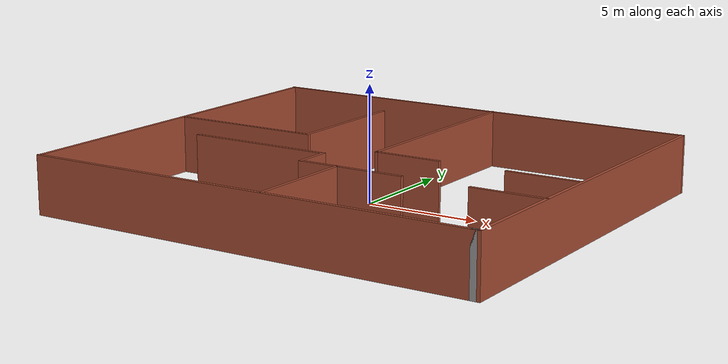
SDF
<?xml version='1.0'?>
<sdf version='1.6'>
  <model name='textureWalls'>
    <link name='Wall_10'>
      <pose frame=''>9.91347 -8.68752 0 0 -0 3.14159</pose>
      <self_collide>0</self_collide>
      <kinematic>0</kinematic>
      <visual name='Wall_10_Visual'>
        <pose frame=''>0 0 1.25 0 -0 0</pose>
        <geometry>
          <box>
            <size>0.423056 0.15 2.5</size>
          </box>
        </geometry>
        <material>
          <script>
            <uri>file://media/materials/scripts/gazebo.material</uri>
            <name>Gazebo/Grey</name>
          </script>
          <ambient>1 1 1 1</ambient>
          <diffuse>0.7 0.7 0.7 1</diffuse>
          <specular>0.01 0.01 0.01 1</specular>
          <emissive>0 0 0 1</emissive>
        </material>
        <cast_shadows>1</cast_shadows>
        <transparency>0</transparency>
      </visual>
      <collision name='Wall_10_Collision'>
        <laser_retro>0</laser_retro>
        <max_contacts>10</max_contacts>
        <pose frame=''>0 0 1.25 0 -0 0</pose>
        <geometry>
          <box>
            <size>0.423056 0.15 2.5</size>
          </box>
        </geometry>
        <surface>
          <friction>
            <ode>
              <mu>1</mu>
              <mu2>1</mu2>
              <fdir1>0 0 0</fdir1>
              <slip1>0</slip1>
              <slip2>0</slip2>
            </ode>
            <torsional>
              <coefficient>1</coefficient>
              <patch_radius>0</patch_radius>
              <surface_radius>0</surface_radius>
              <use_patch_radius>1</use_patch_radius>
              <ode>
                <slip>0</slip>
              </ode>
            </torsional>
          </friction>
          <bounce>
            <restitution_coefficient>0</restitution_coefficient>
            <threshold>1e+06</threshold>
          </bounce>
          <contact>
            <collide_without_contact>0</collide_without_contact>
            <collide_without_contact_bitmask>1</collide_without_contact_bitmask>
            <collide_bitmask>1</collide_bitmask>
            <ode>
              <soft_cfm>0</soft_cfm>
              <soft_erp>0.2</soft_erp>
              <kp>1e+13</kp>
              <kd>1</kd>
              <max_vel>0.01</max_vel>
              <min_depth>0</min_depth>
            </ode>
            <bullet>
              <split_impulse>1</split_impulse>
              <split_impulse_penetration_threshold>-0.01</split_impulse_penetration_threshold>
              <soft_cfm>0</soft_cfm>
              <soft_erp>0.2</soft_erp>
              <kp>1e+13</kp>
              <kd>1</kd>
            </bullet>
          </contact>
        </surface>
      </collision>
    </link>
    <link name='Wall_12'>
      <pose frame=''>10.05 -0.012524 0 0 -0 1.5708</pose>
      <self_collide>0</self_collide>
      <kinematic>0</kinematic>
      <visual name='Wall_12_Visual'>
        <pose frame=''>0 0 1.25 0 -0 0</pose>
        <geometry>
          <box>
            <size>17.5 0.15 2.5</size>
          </box>
        </geometry>
        <material>
          <script>
            <uri>file://media/materials/scripts/gazebo.material</uri>
            <name>Gazebo/Bricks</name>
          </script>
          <ambient>1 1 1 1</ambient>
          <diffuse>1 1 1 1</diffuse>
          <specular>0.2 0.2 0.2 1</specular>
          <emissive>0 0 0 1</emissive>
        </material>
        <cast_shadows>1</cast_shadows>
        <transparency>0</transparency>
      </visual>
      <collision name='Wall_12_Collision'>
        <laser_retro>0</laser_retro>
        <max_contacts>10</max_contacts>
        <pose frame=''>0 0 1.25 0 -0 0</pose>
        <geometry>
          <box>
            <size>17.5 0.15 2.5</size>
          </box>
        </geometry>
        <surface>
          <friction>
            <ode>
              <mu>1</mu>
              <mu2>1</mu2>
              <fdir1>0 0 0</fdir1>
              <slip1>0</slip1>
              <slip2>0</slip2>
            </ode>
            <torsional>
              <coefficient>1</coefficient>
              <patch_radius>0</patch_radius>
              <surface_radius>0</surface_radius>
              <use_patch_radius>1</use_patch_radius>
              <ode>
                <slip>0</slip>
              </ode>
            </torsional>
          </friction>
          <bounce>
            <restitution_coefficient>0</restitution_coefficient>
            <threshold>1e+06</threshold>
          </bounce>
          <contact>
            <collide_without_contact>0</collide_without_contact>
            <collide_without_contact_bitmask>1</collide_without_contact_bitmask>
            <collide_bitmask>1</collide_bitmask>
            <ode>
              <soft_cfm>0</soft_cfm>
              <soft_erp>0.2</soft_erp>
              <kp>1e+13</kp>
              <kd>1</kd>
              <max_vel>0.01</max_vel>
              <min_depth>0</min_depth>
            </ode>
            <bullet>
              <split_impulse>1</split_impulse>
              <split_impulse_penetration_threshold>-0.01</split_impulse_penetration_threshold>
              <soft_cfm>0</soft_cfm>
              <soft_erp>0.2</soft_erp>
              <kp>1e+13</kp>
              <kd>1</kd>
            </bullet>
          </contact>
        </surface>
      </collision>
    </link>
    <link name='Wall_14'>
      <pose frame=''>-10.0148 -0.031987 0 0 0 -1.5708</pose>
      <self_collide>0</self_collide>
      <kinematic>0</kinematic>
      <visual name='Wall_14_Visual'>
        <pose frame=''>0 0 1.25 0 -0 0</pose>
        <geometry>
          <box>
            <size>17.25 0.15 2.5</size>
          </box>
        </geometry>
        <material>
          <script>
            <uri>file://media/materials/scripts/gazebo.material</uri>
            <name>Gazebo/Bricks</name>
          </script>
          <ambient>1 1 1 1</ambient>
          <diffuse>1 1 1 1</diffuse>
          <specular>0.2 0.2 0.2 1</specular>
          <emissive>0 0 0 1</emissive>
        </material>
        <cast_shadows>1</cast_shadows>
        <transparency>0</transparency>
      </visual>
      <collision name='Wall_14_Collision'>
        <laser_retro>0</laser_retro>
        <max_contacts>10</max_contacts>
        <pose frame=''>0 0 1.25 0 -0 0</pose>
        <geometry>
          <box>
            <size>17.25 0.15 2.5</size>
          </box>
        </geometry>
        <surface>
          <friction>
            <ode>
              <mu>1</mu>
              <mu2>1</mu2>
              <fdir1>0 0 0</fdir1>
              <slip1>0</slip1>
              <slip2>0</slip2>
            </ode>
            <torsional>
              <coefficient>1</coefficient>
              <patch_radius>0</patch_radius>
              <surface_radius>0</surface_radius>
              <use_patch_radius>1</use_patch_radius>
              <ode>
                <slip>0</slip>
              </ode>
            </torsional>
          </friction>
          <bounce>
            <restitution_coefficient>0</restitution_coefficient>
            <threshold>1e+06</threshold>
          </bounce>
          <contact>
            <collide_without_contact>0</collide_without_contact>
            <collide_without_contact_bitmask>1</collide_without_contact_bitmask>
            <collide_bitmask>1</collide_bitmask>
            <ode>
              <soft_cfm>0</soft_cfm>
              <soft_erp>0.2</soft_erp>
              <kp>1e+13</kp>
              <kd>1</kd>
              <max_vel>0.01</max_vel>
              <min_depth>0</min_depth>
            </ode>
            <bullet>
              <split_impulse>1</split_impulse>
              <split_impulse_penetration_threshold>-0.01</split_impulse_penetration_threshold>
              <soft_cfm>0</soft_cfm>
              <soft_erp>0.2</soft_erp>
              <kp>1e+13</kp>
              <kd>1</kd>
            </bullet>
          </contact>
        </surface>
      </collision>
    </link>
    <link name='Wall_17'>
      <pose frame=''>0 8.66248 0 0 -0 3.14159</pose>
      <self_collide>0</self_collide>
      <kinematic>0</kinematic>
      <visual name='Wall_17_Visual'>
        <pose frame=''>0 0 1.25 0 -0 0</pose>
        <geometry>
          <box>
            <size>20.25 0.15 2.5</size>
          </box>
        </geometry>
        <material>
          <script>
            <uri>file://media/materials/scripts/gazebo.material</uri>
            <name>Gazebo/Bricks</name>
          </script>
          <ambient>1 1 1 1</ambient>
          <diffuse>1 1 1 1</diffuse>
          <specular>0.2 0.2 0.2 1</specular>
          <emissive>0 0 0 1</emissive>
        </material>
        <cast_shadows>1</cast_shadows>
        <transparency>0</transparency>
      </visual>
      <collision name='Wall_17_Collision'>
        <laser_retro>0</laser_retro>
        <max_contacts>10</max_contacts>
        <pose frame=''>0 0 1.25 0 -0 0</pose>
        <geometry>
          <box>
            <size>20.25 0.15 2.5</size>
          </box>
        </geometry>
        <surface>
          <friction>
            <ode>
              <mu>1</mu>
              <mu2>1</mu2>
              <fdir1>0 0 0</fdir1>
              <slip1>0</slip1>
              <slip2>0</slip2>
            </ode>
            <torsional>
              <coefficient>1</coefficient>
              <patch_radius>0</patch_radius>
              <surface_radius>0</surface_radius>
              <use_patch_radius>1</use_patch_radius>
              <ode>
                <slip>0</slip>
              </ode>
            </torsional>
          </friction>
          <bounce>
            <restitution_coefficient>0</restitution_coefficient>
            <threshold>1e+06</threshold>
          </bounce>
          <contact>
            <collide_without_contact>0</collide_without_contact>
            <collide_without_contact_bitmask>1</collide_without_contact_bitmask>
            <collide_bitmask>1</collide_bitmask>
            <ode>
              <soft_cfm>0</soft_cfm>
              <soft_erp>0.2</soft_erp>
              <kp>1e+13</kp>
              <kd>1</kd>
              <max_vel>0.01</max_vel>
              <min_depth>0</min_depth>
            </ode>
            <bullet>
              <split_impulse>1</split_impulse>
              <split_impulse_penetration_threshold>-0.01</split_impulse_penetration_threshold>
              <soft_cfm>0</soft_cfm>
              <soft_erp>0.2</soft_erp>
              <kp>1e+13</kp>
              <kd>1</kd>
            </bullet>
          </contact>
        </surface>
      </collision>
    </link>
    <link name='Wall_25'>
      <pose frame=''>8.48297 -3.83231 0 0 -0 3.14159</pose>
      <self_collide>0</self_collide>
      <kinematic>0</kinematic>
      <visual name='Wall_25_Visual'>
        <pose frame=''>0 0 1.25 0 -0 0</pose>
        <geometry>
          <box>
            <size>3.25 0.15 2.5</size>
          </box>
        </geometry>
        <material>
          <script>
            <uri>file://media/materials/scripts/gazebo.material</uri>
            <name>Gazebo/Bricks</name>
          </script>
          <ambient>1 1 1 1</ambient>
          <diffuse>1 1 1 1</diffuse>
          <specular>0.2 0.2 0.2 1</specular>
          <emissive>0 0 0 1</emissive>
        </material>
        <cast_shadows>1</cast_shadows>
        <transparency>0</transparency>
      </visual>
      <collision name='Wall_25_Collision'>
        <laser_retro>0</laser_retro>
        <max_contacts>10</max_contacts>
        <pose frame=''>0 0 1.25 0 -0 0</pose>
        <geometry>
          <box>
            <size>3.25 0.15 2.5</size>
          </box>
        </geometry>
        <surface>
          <friction>
            <ode>
              <mu>1</mu>
              <mu2>1</mu2>
              <fdir1>0 0 0</fdir1>
              <slip1>0</slip1>
              <slip2>0</slip2>
            </ode>
            <torsional>
              <coefficient>1</coefficient>
              <patch_radius>0</patch_radius>
              <surface_radius>0</surface_radius>
              <use_patch_radius>1</use_patch_radius>
              <ode>
                <slip>0</slip>
              </ode>
            </torsional>
          </friction>
          <bounce>
            <restitution_coefficient>0</restitution_coefficient>
            <threshold>1e+06</threshold>
          </bounce>
          <contact>
            <collide_without_contact>0</collide_without_contact>
            <collide_without_contact_bitmask>1</collide_without_contact_bitmask>
            <collide_bitmask>1</collide_bitmask>
            <ode>
              <soft_cfm>0</soft_cfm>
              <soft_erp>0.2</soft_erp>
              <kp>1e+13</kp>
              <kd>1</kd>
              <max_vel>0.01</max_vel>
              <min_depth>0</min_depth>
            </ode>
            <bullet>
              <split_impulse>1</split_impulse>
              <split_impulse_penetration_threshold>-0.01</split_impulse_penetration_threshold>
              <soft_cfm>0</soft_cfm>
              <soft_erp>0.2</soft_erp>
              <kp>1e+13</kp>
              <kd>1</kd>
            </bullet>
          </contact>
        </surface>
      </collision>
    </link>
    <link name='Wall_27'>
      <pose frame=''>8.41261 -0.912476 0 0 -0 3.14159</pose>
      <self_collide>0</self_collide>
      <kinematic>0</kinematic>
      <visual name='Wall_27_Visual'>
        <pose frame=''>0 0 1.25 0 -0 0</pose>
        <geometry>
          <box>
            <size>3.25 0.15 2.5</size>
          </box>
        </geometry>
        <material>
          <script>
            <uri>file://media/materials/scripts/gazebo.material</uri>
            <name>Gazebo/Bricks</name>
          </script>
          <ambient>1 1 1 1</ambient>
          <diffuse>1 1 1 1</diffuse>
          <specular>0.2 0.2 0.2 1</specular>
          <emissive>0 0 0 1</emissive>
        </material>
        <cast_shadows>1</cast_shadows>
        <transparency>0</transparency>
      </visual>
      <collision name='Wall_27_Collision'>
        <laser_retro>0</laser_retro>
        <max_contacts>10</max_contacts>
        <pose frame=''>0 0 1.25 0 -0 0</pose>
        <geometry>
          <box>
            <size>3.25 0.15 2.5</size>
          </box>
        </geometry>
        <surface>
          <friction>
            <ode>
              <mu>1</mu>
              <mu2>1</mu2>
              <fdir1>0 0 0</fdir1>
              <slip1>0</slip1>
              <slip2>0</slip2>
            </ode>
            <torsional>
              <coefficient>1</coefficient>
              <patch_radius>0</patch_radius>
              <surface_radius>0</surface_radius>
              <use_patch_radius>1</use_patch_radius>
              <ode>
                <slip>0</slip>
              </ode>
            </torsional>
          </friction>
          <bounce>
            <restitution_coefficient>0</restitution_coefficient>
            <threshold>1e+06</threshold>
          </bounce>
          <contact>
            <collide_without_contact>0</collide_without_contact>
            <collide_without_contact_bitmask>1</collide_without_contact_bitmask>
            <collide_bitmask>1</collide_bitmask>
            <ode>
              <soft_cfm>0</soft_cfm>
              <soft_erp>0.2</soft_erp>
              <kp>1e+13</kp>
              <kd>1</kd>
              <max_vel>0.01</max_vel>
              <min_depth>0</min_depth>
            </ode>
            <bullet>
              <split_impulse>1</split_impulse>
              <split_impulse_penetration_threshold>-0.01</split_impulse_penetration_threshold>
              <soft_cfm>0</soft_cfm>
              <soft_erp>0.2</soft_erp>
              <kp>1e+13</kp>
              <kd>1</kd>
            </bullet>
          </contact>
        </surface>
      </collision>
    </link>
    <link name='Wall_30'>
      <pose frame=''>2.38133 -0.912476 0 0 -0 3.14159</pose>
      <self_collide>0</self_collide>
      <kinematic>0</kinematic>
      <visual name='Wall_30_Visual'>
        <pose frame=''>0 0 1.25 0 -0 0</pose>
        <geometry>
          <box>
            <size>3 0.15 2.5</size>
          </box>
        </geometry>
        <material>
          <script>
            <uri>file://media/materials/scripts/gazebo.material</uri>
            <name>Gazebo/Bricks</name>
          </script>
          <ambient>1 1 1 1</ambient>
          <diffuse>1 1 1 1</diffuse>
          <specular>0.2 0.2 0.2 1</specular>
          <emissive>0 0 0 1</emissive>
        </material>
        <cast_shadows>1</cast_shadows>
        <transparency>0</transparency>
      </visual>
      <collision name='Wall_30_Collision'>
        <laser_retro>0</laser_retro>
        <max_contacts>10</max_contacts>
        <pose frame=''>0 0 1.25 0 -0 0</pose>
        <geometry>
          <box>
            <size>3 0.15 2.5</size>
          </box>
        </geometry>
        <surface>
          <friction>
            <ode>
              <mu>1</mu>
              <mu2>1</mu2>
              <fdir1>0 0 0</fdir1>
              <slip1>0</slip1>
              <slip2>0</slip2>
            </ode>
            <torsional>
              <coefficient>1</coefficient>
              <patch_radius>0</patch_radius>
              <surface_radius>0</surface_radius>
              <use_patch_radius>1</use_patch_radius>
              <ode>
                <slip>0</slip>
              </ode>
            </torsional>
          </friction>
          <bounce>
            <restitution_coefficient>0</restitution_coefficient>
            <threshold>1e+06</threshold>
          </bounce>
          <contact>
            <collide_without_contact>0</collide_without_contact>
            <collide_without_contact_bitmask>1</collide_without_contact_bitmask>
            <collide_bitmask>1</collide_bitmask>
            <ode>
              <soft_cfm>0</soft_cfm>
              <soft_erp>0.2</soft_erp>
              <kp>1e+13</kp>
              <kd>1</kd>
              <max_vel>0.01</max_vel>
              <min_depth>0</min_depth>
            </ode>
            <bullet>
              <split_impulse>1</split_impulse>
              <split_impulse_penetration_threshold>-0.01</split_impulse_penetration_threshold>
              <soft_cfm>0</soft_cfm>
              <soft_erp>0.2</soft_erp>
              <kp>1e+13</kp>
              <kd>1</kd>
            </bullet>
          </contact>
        </surface>
      </collision>
    </link>
    <link name='Wall_32'>
      <pose frame=''>0.956329 3.88752 0 0 -0 1.5708</pose>
      <self_collide>0</self_collide>
      <kinematic>0</kinematic>
      <visual name='Wall_32_Visual'>
        <pose frame=''>0 0 1.25 0 -0 0</pose>
        <geometry>
          <box>
            <size>9.75 0.15 2.5</size>
          </box>
        </geometry>
        <material>
          <script>
            <uri>file://media/materials/scripts/gazebo.material</uri>
            <name>Gazebo/Bricks</name>
          </script>
          <ambient>1 1 1 1</ambient>
          <diffuse>1 1 1 1</diffuse>
          <specular>0.2 0.2 0.2 1</specular>
          <emissive>0 0 0 1</emissive>
        </material>
        <cast_shadows>1</cast_shadows>
        <transparency>0</transparency>
      </visual>
      <collision name='Wall_32_Collision'>
        <laser_retro>0</laser_retro>
        <max_contacts>10</max_contacts>
        <pose frame=''>0 0 1.25 0 -0 0</pose>
        <geometry>
          <box>
            <size>9.75 0.15 2.5</size>
          </box>
        </geometry>
        <surface>
          <friction>
            <ode>
              <mu>1</mu>
              <mu2>1</mu2>
              <fdir1>0 0 0</fdir1>
              <slip1>0</slip1>
              <slip2>0</slip2>
            </ode>
            <torsional>
              <coefficient>1</coefficient>
              <patch_radius>0</patch_radius>
              <surface_radius>0</surface_radius>
              <use_patch_radius>1</use_patch_radius>
              <ode>
                <slip>0</slip>
              </ode>
            </torsional>
          </friction>
          <bounce>
            <restitution_coefficient>0</restitution_coefficient>
            <threshold>1e+06</threshold>
          </bounce>
          <contact>
            <collide_without_contact>0</collide_without_contact>
            <collide_without_contact_bitmask>1</collide_without_contact_bitmask>
            <collide_bitmask>1</collide_bitmask>
            <ode>
              <soft_cfm>0</soft_cfm>
              <soft_erp>0.2</soft_erp>
              <kp>1e+13</kp>
              <kd>1</kd>
              <max_vel>0.01</max_vel>
              <min_depth>0</min_depth>
            </ode>
            <bullet>
              <split_impulse>1</split_impulse>
              <split_impulse_penetration_threshold>-0.01</split_impulse_penetration_threshold>
              <soft_cfm>0</soft_cfm>
              <soft_erp>0.2</soft_erp>
              <kp>1e+13</kp>
              <kd>1</kd>
            </bullet>
          </contact>
        </surface>
      </collision>
    </link>
    <link name='Wall_38'>
      <pose frame=''>-3.28652 3.17156 0 0 0 -1.5708</pose>
      <self_collide>0</self_collide>
      <kinematic>0</kinematic>
      <visual name='Wall_38_Visual'>
        <pose frame=''>0 0 1.25 0 -0 0</pose>
        <geometry>
          <box>
            <size>6 0.15 2.5</size>
          </box>
        </geometry>
        <material>
          <script>
            <uri>file://media/materials/scripts/gazebo.material</uri>
            <name>Gazebo/Bricks</name>
          </script>
          <ambient>1 1 1 1</ambient>
          <diffuse>1 1 1 1</diffuse>
          <specular>0.2 0.2 0.2 1</specular>
          <emissive>0 0 0 1</emissive>
        </material>
        <cast_shadows>1</cast_shadows>
        <transparency>0</transparency>
      </visual>
      <collision name='Wall_38_Collision'>
        <laser_retro>0</laser_retro>
        <max_contacts>10</max_contacts>
        <pose frame=''>0 0 1.25 0 -0 0</pose>
        <geometry>
          <box>
            <size>6 0.15 2.5</size>
          </box>
        </geometry>
        <surface>
          <friction>
            <ode>
              <mu>1</mu>
              <mu2>1</mu2>
              <fdir1>0 0 0</fdir1>
              <slip1>0</slip1>
              <slip2>0</slip2>
            </ode>
            <torsional>
              <coefficient>1</coefficient>
              <patch_radius>0</patch_radius>
              <surface_radius>0</surface_radius>
              <use_patch_radius>1</use_patch_radius>
              <ode>
                <slip>0</slip>
              </ode>
            </torsional>
          </friction>
          <bounce>
            <restitution_coefficient>0</restitution_coefficient>
            <threshold>1e+06</threshold>
          </bounce>
          <contact>
            <collide_without_contact>0</collide_without_contact>
            <collide_without_contact_bitmask>1</collide_without_contact_bitmask>
            <collide_bitmask>1</collide_bitmask>
            <ode>
              <soft_cfm>0</soft_cfm>
              <soft_erp>0.2</soft_erp>
              <kp>1e+13</kp>
              <kd>1</kd>
              <max_vel>0.01</max_vel>
              <min_depth>0</min_depth>
            </ode>
            <bullet>
              <split_impulse>1</split_impulse>
              <split_impulse_penetration_threshold>-0.01</split_impulse_penetration_threshold>
              <soft_cfm>0</soft_cfm>
              <soft_erp>0.2</soft_erp>
              <kp>1e+13</kp>
              <kd>1</kd>
            </bullet>
          </contact>
        </surface>
      </collision>
    </link>
    <link name='Wall_39'>
      <pose frame=''>-6.58652 0.246559 0 0 -0 3.14159</pose>
      <self_collide>0</self_collide>
      <kinematic>0</kinematic>
      <visual name='Wall_39_Visual'>
        <pose frame=''>0 0 1.25 0 -0 0</pose>
        <geometry>
          <box>
            <size>6.75 0.15 2.5</size>
          </box>
        </geometry>
        <material>
          <script>
            <uri>file://media/materials/scripts/gazebo.material</uri>
            <name>Gazebo/Bricks</name>
          </script>
          <ambient>1 1 1 1</ambient>
          <diffuse>1 1 1 1</diffuse>
          <specular>0.2 0.2 0.2 1</specular>
          <emissive>0 0 0 1</emissive>
        </material>
        <cast_shadows>1</cast_shadows>
        <transparency>0</transparency>
      </visual>
      <collision name='Wall_39_Collision'>
        <laser_retro>0</laser_retro>
        <max_contacts>10</max_contacts>
        <pose frame=''>0 0 1.25 0 -0 0</pose>
        <geometry>
          <box>
            <size>6.75 0.15 2.5</size>
          </box>
        </geometry>
        <surface>
          <friction>
            <ode>
              <mu>1</mu>
              <mu2>1</mu2>
              <fdir1>0 0 0</fdir1>
              <slip1>0</slip1>
              <slip2>0</slip2>
            </ode>
            <torsional>
              <coefficient>1</coefficient>
              <patch_radius>0</patch_radius>
              <surface_radius>0</surface_radius>
              <use_patch_radius>1</use_patch_radius>
              <ode>
                <slip>0</slip>
              </ode>
            </torsional>
          </friction>
          <bounce>
            <restitution_coefficient>0</restitution_coefficient>
            <threshold>1e+06</threshold>
          </bounce>
          <contact>
            <collide_without_contact>0</collide_without_contact>
            <collide_without_contact_bitmask>1</collide_without_contact_bitmask>
            <collide_bitmask>1</collide_bitmask>
            <ode>
              <soft_cfm>0</soft_cfm>
              <soft_erp>0.2</soft_erp>
              <kp>1e+13</kp>
              <kd>1</kd>
              <max_vel>0.01</max_vel>
              <min_depth>0</min_depth>
            </ode>
            <bullet>
              <split_impulse>1</split_impulse>
              <split_impulse_penetration_threshold>-0.01</split_impulse_penetration_threshold>
              <soft_cfm>0</soft_cfm>
              <soft_erp>0.2</soft_erp>
              <kp>1e+13</kp>
              <kd>1</kd>
            </bullet>
          </contact>
        </surface>
      </collision>
    </link>
    <link name='Wall_41'>
      <pose frame=''>-3.90479 -2.29687 0 0 -0 0</pose>
      <self_collide>0</self_collide>
      <kinematic>0</kinematic>
      <visual name='Wall_41_Visual'>
        <pose frame=''>0 0 1.25 0 -0 0</pose>
        <geometry>
          <box>
            <size>6.5 0.15 2.5</size>
          </box>
        </geometry>
        <material>
          <script>
            <uri>file://media/materials/scripts/gazebo.material</uri>
            <name>Gazebo/Bricks</name>
          </script>
          <ambient>1 1 1 1</ambient>
          <diffuse>1 1 1 1</diffuse>
          <specular>0.2 0.2 0.2 1</specular>
          <emissive>0 0 0 1</emissive>
        </material>
        <cast_shadows>1</cast_shadows>
        <transparency>0</transparency>
      </visual>
      <collision name='Wall_41_Collision'>
        <laser_retro>0</laser_retro>
        <max_contacts>10</max_contacts>
        <pose frame=''>0 0 1.25 0 -0 0</pose>
        <geometry>
          <box>
            <size>6.5 0.15 2.5</size>
          </box>
        </geometry>
        <surface>
          <friction>
            <ode>
              <mu>1</mu>
              <mu2>1</mu2>
              <fdir1>0 0 0</fdir1>
              <slip1>0</slip1>
              <slip2>0</slip2>
            </ode>
            <torsional>
              <coefficient>1</coefficient>
              <patch_radius>0</patch_radius>
              <surface_radius>0</surface_radius>
              <use_patch_radius>1</use_patch_radius>
              <ode>
                <slip>0</slip>
              </ode>
            </torsional>
          </friction>
          <bounce>
            <restitution_coefficient>0</restitution_coefficient>
            <threshold>1e+06</threshold>
          </bounce>
          <contact>
            <collide_without_contact>0</collide_without_contact>
            <collide_without_contact_bitmask>1</collide_without_contact_bitmask>
            <collide_bitmask>1</collide_bitmask>
            <ode>
              <soft_cfm>0</soft_cfm>
              <soft_erp>0.2</soft_erp>
              <kp>1e+13</kp>
              <kd>1</kd>
              <max_vel>0.01</max_vel>
              <min_depth>0</min_depth>
            </ode>
            <bullet>
              <split_impulse>1</split_impulse>
              <split_impulse_penetration_threshold>-0.01</split_impulse_penetration_threshold>
              <soft_cfm>0</soft_cfm>
              <soft_erp>0.2</soft_erp>
              <kp>1e+13</kp>
              <kd>1</kd>
            </bullet>
          </contact>
        </surface>
      </collision>
    </link>
    <link name='Wall_46'>
      <pose frame=''>0.970868 -6.25918 0 0 0 -1.5708</pose>
      <self_collide>0</self_collide>
      <kinematic>0</kinematic>
      <visual name='Wall_46_Visual'>
        <pose frame=''>0 0 1.25 0 -0 0</pose>
        <geometry>
          <box>
            <size>5 0.15 2.5</size>
          </box>
        </geometry>
        <material>
          <script>
            <uri>file://media/materials/scripts/gazebo.material</uri>
            <name>Gazebo/Bricks</name>
          </script>
          <ambient>1 1 1 1</ambient>
          <diffuse>1 1 1 1</diffuse>
          <specular>0.2 0.2 0.2 1</specular>
          <emissive>0 0 0 1</emissive>
        </material>
        <cast_shadows>1</cast_shadows>
        <transparency>0</transparency>
      </visual>
      <collision name='Wall_46_Collision'>
        <laser_retro>0</laser_retro>
        <max_contacts>10</max_contacts>
        <pose frame=''>0 0 1.25 0 -0 0</pose>
        <geometry>
          <box>
            <size>5 0.15 2.5</size>
          </box>
        </geometry>
        <surface>
          <friction>
            <ode>
              <mu>1</mu>
              <mu2>1</mu2>
              <fdir1>0 0 0</fdir1>
              <slip1>0</slip1>
              <slip2>0</slip2>
            </ode>
            <torsional>
              <coefficient>1</coefficient>
              <patch_radius>0</patch_radius>
              <surface_radius>0</surface_radius>
              <use_patch_radius>1</use_patch_radius>
              <ode>
                <slip>0</slip>
              </ode>
            </torsional>
          </friction>
          <bounce>
            <restitution_coefficient>0</restitution_coefficient>
            <threshold>1e+06</threshold>
          </bounce>
          <contact>
            <collide_without_contact>0</collide_without_contact>
            <collide_without_contact_bitmask>1</collide_without_contact_bitmask>
            <collide_bitmask>1</collide_bitmask>
            <ode>
              <soft_cfm>0</soft_cfm>
              <soft_erp>0.2</soft_erp>
              <kp>1e+13</kp>
              <kd>1</kd>
              <max_vel>0.01</max_vel>
              <min_depth>0</min_depth>
            </ode>
            <bullet>
              <split_impulse>1</split_impulse>
              <split_impulse_penetration_threshold>-0.01</split_impulse_penetration_threshold>
              <soft_cfm>0</soft_cfm>
              <soft_erp>0.2</soft_erp>
              <kp>1e+13</kp>
              <kd>1</kd>
            </bullet>
          </contact>
        </surface>
      </collision>
    </link>
    <link name='Wall_48'>
      <pose frame=''>-0.729792 -3.05763 0 0 0 -1.5708</pose>
      <self_collide>0</self_collide>
      <kinematic>0</kinematic>
      <visual name='Wall_48_Visual'>
        <pose frame=''>0 0 1.25 0 -0 0</pose>
        <geometry>
          <box>
            <size>1.67153 0.15 2.5</size>
          </box>
        </geometry>
        <material>
          <script>
            <uri>file://media/materials/scripts/gazebo.material</uri>
            <name>Gazebo/Bricks</name>
          </script>
          <ambient>1 1 1 1</ambient>
          <diffuse>1 1 1 1</diffuse>
          <specular>0.2 0.2 0.2 1</specular>
          <emissive>0 0 0 1</emissive>
        </material>
        <cast_shadows>1</cast_shadows>
        <transparency>0</transparency>
      </visual>
      <collision name='Wall_48_Collision'>
        <laser_retro>0</laser_retro>
        <max_contacts>10</max_contacts>
        <pose frame=''>0 0 1.25 0 -0 0</pose>
        <geometry>
          <box>
            <size>1.67153 0.15 2.5</size>
          </box>
        </geometry>
        <surface>
          <friction>
            <ode>
              <mu>1</mu>
              <mu2>1</mu2>
              <fdir1>0 0 0</fdir1>
              <slip1>0</slip1>
              <slip2>0</slip2>
            </ode>
            <torsional>
              <coefficient>1</coefficient>
              <patch_radius>0</patch_radius>
              <surface_radius>0</surface_radius>
              <use_patch_radius>1</use_patch_radius>
              <ode>
                <slip>0</slip>
              </ode>
            </torsional>
          </friction>
          <bounce>
            <restitution_coefficient>0</restitution_coefficient>
            <threshold>1e+06</threshold>
          </bounce>
          <contact>
            <collide_without_contact>0</collide_without_contact>
            <collide_without_contact_bitmask>1</collide_without_contact_bitmask>
            <collide_bitmask>1</collide_bitmask>
            <ode>
              <soft_cfm>0</soft_cfm>
              <soft_erp>0.2</soft_erp>
              <kp>1e+13</kp>
              <kd>1</kd>
              <max_vel>0.01</max_vel>
              <min_depth>0</min_depth>
            </ode>
            <bullet>
              <split_impulse>1</split_impulse>
              <split_impulse_penetration_threshold>-0.01</split_impulse_penetration_threshold>
              <soft_cfm>0</soft_cfm>
              <soft_erp>0.2</soft_erp>
              <kp>1e+13</kp>
              <kd>1</kd>
            </bullet>
          </contact>
        </surface>
      </collision>
    </link>
    <link name='Wall_49'>
      <pose frame=''>1.57593 -3.82411 0 0 -0 0</pose>
      <self_collide>0</self_collide>
      <kinematic>0</kinematic>
      <visual name='Wall_49_Visual'>
        <pose frame=''>0 0 1.25 0 -0 0</pose>
        <geometry>
          <box>
            <size>4.75 0.15 2.5</size>
          </box>
        </geometry>
        <material>
          <script>
            <uri>file://media/materials/scripts/gazebo.material</uri>
            <name>Gazebo/Bricks</name>
          </script>
          <ambient>1 1 1 1</ambient>
          <diffuse>1 1 1 1</diffuse>
          <specular>0.2 0.2 0.2 1</specular>
          <emissive>0 0 0 1</emissive>
        </material>
        <cast_shadows>1</cast_shadows>
        <transparency>0</transparency>
      </visual>
      <collision name='Wall_49_Collision'>
        <laser_retro>0</laser_retro>
        <max_contacts>10</max_contacts>
        <pose frame=''>0 0 1.25 0 -0 0</pose>
        <geometry>
          <box>
            <size>4.75 0.15 2.5</size>
          </box>
        </geometry>
        <surface>
          <friction>
            <ode>
              <mu>1</mu>
              <mu2>1</mu2>
              <fdir1>0 0 0</fdir1>
              <slip1>0</slip1>
              <slip2>0</slip2>
            </ode>
            <torsional>
              <coefficient>1</coefficient>
              <patch_radius>0</patch_radius>
              <surface_radius>0</surface_radius>
              <use_patch_radius>1</use_patch_radius>
              <ode>
                <slip>0</slip>
              </ode>
            </torsional>
          </friction>
          <bounce>
            <restitution_coefficient>0</restitution_coefficient>
            <threshold>1e+06</threshold>
          </bounce>
          <contact>
            <collide_without_contact>0</collide_without_contact>
            <collide_without_contact_bitmask>1</collide_without_contact_bitmask>
            <collide_bitmask>1</collide_bitmask>
            <ode>
              <soft_cfm>0</soft_cfm>
              <soft_erp>0.2</soft_erp>
              <kp>1e+13</kp>
              <kd>1</kd>
              <max_vel>0.01</max_vel>
              <min_depth>0</min_depth>
            </ode>
            <bullet>
              <split_impulse>1</split_impulse>
              <split_impulse_penetration_threshold>-0.01</split_impulse_penetration_threshold>
              <soft_cfm>0</soft_cfm>
              <soft_erp>0.2</soft_erp>
              <kp>1e+13</kp>
              <kd>1</kd>
            </bullet>
          </contact>
        </surface>
      </collision>
    </link>
    <link name='Wall_9'>
      <pose frame=''>0 -8.68752 0 0 -0 0</pose>
      <self_collide>0</self_collide>
      <kinematic>0</kinematic>
      <visual name='Wall_9_Visual'>
        <pose frame=''>0 0 1.25 0 -0 0</pose>
        <geometry>
          <box>
            <size>20.25 0.15 2.5</size>
          </box>
        </geometry>
        <material>
          <script>
            <uri>file://media/materials/scripts/gazebo.material</uri>
            <name>Gazebo/Bricks</name>
          </script>
          <ambient>1 1 1 1</ambient>
          <diffuse>1 1 1 1</diffuse>
          <specular>0.2 0.2 0.2 1</specular>
          <emissive>0 0 0 1</emissive>
        </material>
        <cast_shadows>1</cast_shadows>
        <transparency>0</transparency>
      </visual>
      <collision name='Wall_9_Collision'>
        <laser_retro>0</laser_retro>
        <max_contacts>10</max_contacts>
        <pose frame=''>0 0 1.25 0 -0 0</pose>
        <geometry>
          <box>
            <size>20.25 0.15 2.5</size>
          </box>
        </geometry>
        <surface>
          <friction>
            <ode>
              <mu>1</mu>
              <mu2>1</mu2>
              <fdir1>0 0 0</fdir1>
              <slip1>0</slip1>
              <slip2>0</slip2>
            </ode>
            <torsional>
              <coefficient>1</coefficient>
              <patch_radius>0</patch_radius>
              <surface_radius>0</surface_radius>
              <use_patch_radius>1</use_patch_radius>
              <ode>
                <slip>0</slip>
              </ode>
            </torsional>
          </friction>
          <bounce>
            <restitution_coefficient>0</restitution_coefficient>
            <threshold>1e+06</threshold>
          </bounce>
          <contact>
            <collide_without_contact>0</collide_without_contact>
            <collide_without_contact_bitmask>1</collide_without_contact_bitmask>
            <collide_bitmask>1</collide_bitmask>
            <ode>
              <soft_cfm>0</soft_cfm>
              <soft_erp>0.2</soft_erp>
              <kp>1e+13</kp>
              <kd>1</kd>
              <max_vel>0.01</max_vel>
              <min_depth>0</min_depth>
            </ode>
            <bullet>
              <split_impulse>1</split_impulse>
              <split_impulse_penetration_threshold>-0.01</split_impulse_penetration_threshold>
              <soft_cfm>0</soft_cfm>
              <soft_erp>0.2</soft_erp>
              <kp>1e+13</kp>
              <kd>1</kd>
            </bullet>
          </contact>
        </surface>
      </collision>
    </link>
    <static>1</static>
    <allow_auto_disable>1</allow_auto_disable>
  </model>
</sdf>
